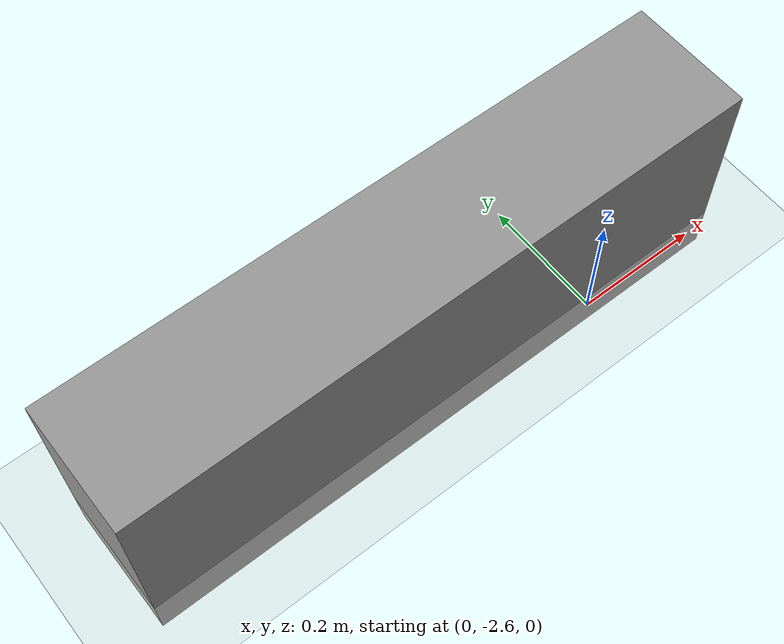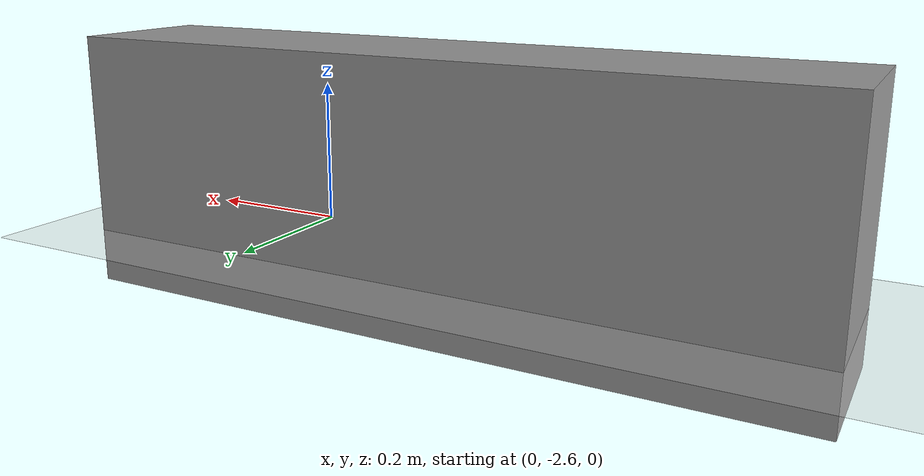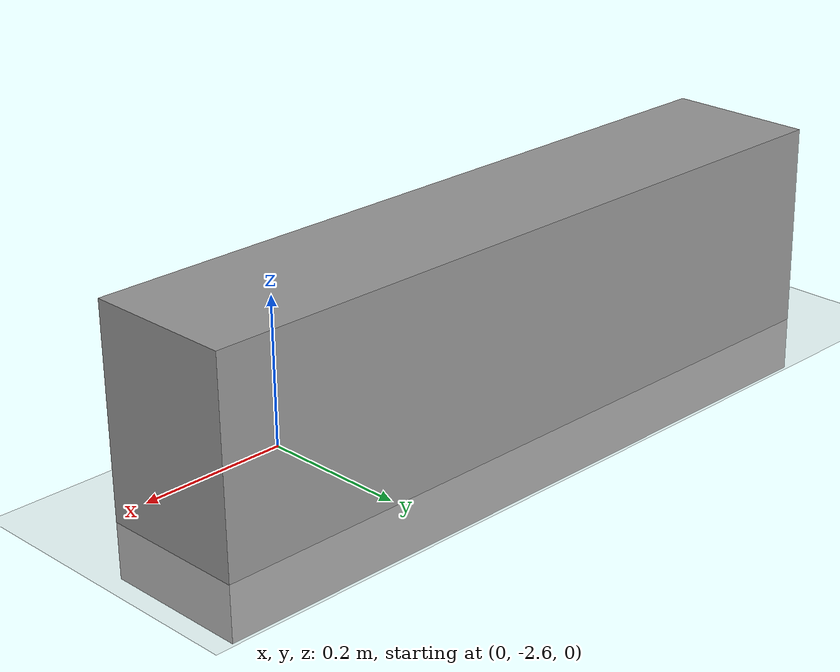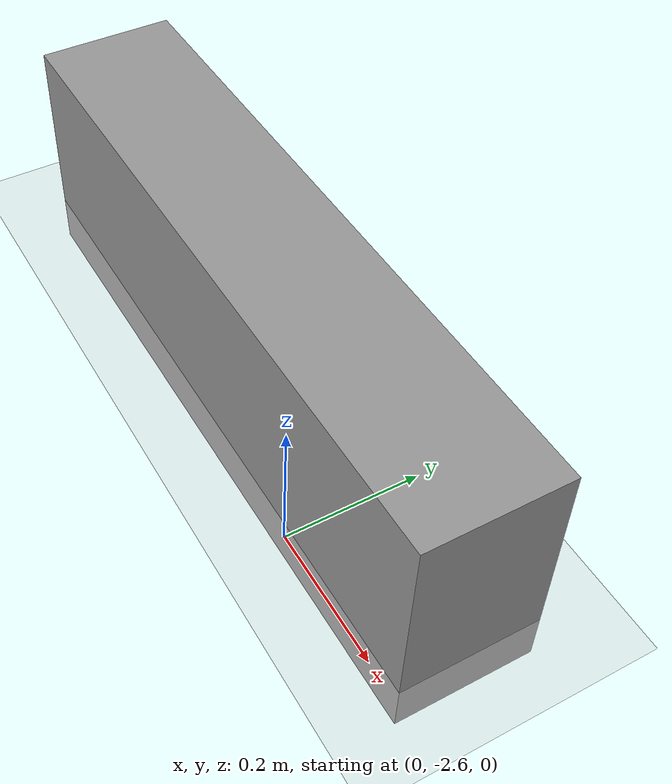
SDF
<?xml version="1.0"?>
<sdf version="1.5">
    <world name="default">

        <include>
            <uri>model://ground_plane</uri>
        </include>
        <include>
            <uri>model://sun</uri>
        </include>
        <plugin name="arm_control" filename="libarm_gazebo.so" />

        <model name='unit_box'>
      <pose>-0.25 -2.49 0.1 0 0 0</pose>
      <link name='link'>
        <inertial>
          <mass>0.1</mass>
          <inertia>
            <ixx>0.166667</ixx>
            <ixy>0</ixy>
            <ixz>0</ixz>
            <iyy>0.166667</iyy>
            <iyz>0</iyz>
            <izz>0.166667</izz>
          </inertia>
          <pose>0 0 0 0 -0 0</pose>
        </inertial>
        <collision name='collision'>
          <geometry>
            <box>
              <size>1 0.2 0.35</size>
            </box>
          </geometry>
          <max_contacts>10</max_contacts>
          <surface>
            <contact>
              <ode/>
            </contact>
            <bounce/>
            <friction>
              <torsional>
                <ode/>
              </torsional>
              <ode/>
            </friction>
          </surface>
        </collision>
        <visual name='visual'>
          <geometry>
            <box>
              <size>1 0.2 0.35  </size>
            </box>
          </geometry>
          <material>
            <script>
              <name>Gazebo/Grey</name>
              <uri>file://media/materials/scripts/gazebo.material</uri>
            </script>
          </material>
        </visual>
        <self_collide>0</self_collide>
        <enable_wind>0</enable_wind>
        <kinematic>0</kinematic>
      </link>
    </model>
    </world>
</sdf>
